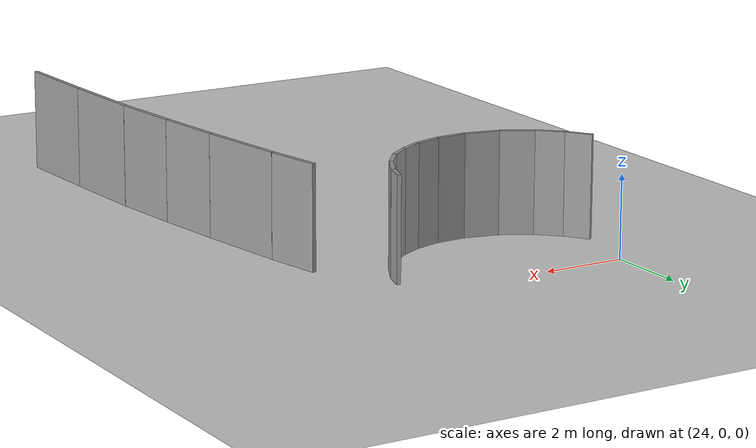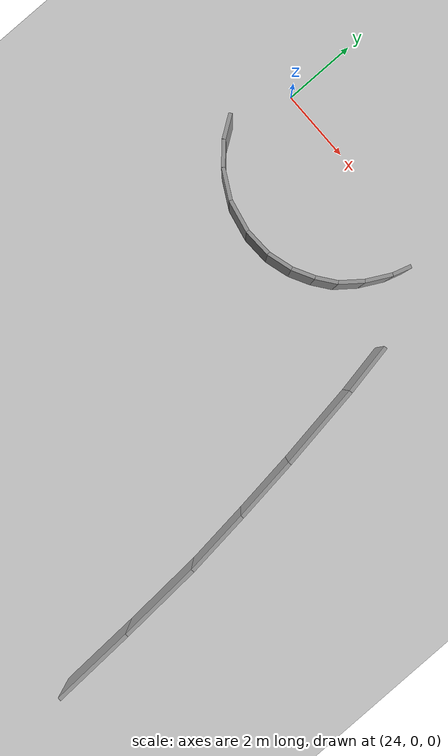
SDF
<sdf version="1.6">
 <world name="default">
  <model name="ground_plane">
   <static>1</static>
   <link name="link">
    <collision name="collision">
     <geometry><plane><normal>0 0 1</normal><size>100 100</size></plane></geometry>
     <surface><friction><ode><mu>100</mu><mu2>50</mu2></ode></friction></surface>
    </collision>
    <visual name="visual">
     <cast_shadows>0</cast_shadows>
     <geometry><plane><normal>0 0 1</normal><size>100 100</size></plane></geometry>
     <material>
      <script><uri>file://media/materials/scripts/gazebo.material</uri><name>Gazebo/Grey</name></script>
     </material>
    </visual>
   </link>
  </model>
  <model name="50041193">
   <static>1</static>
   <link name="Wall_122">
    <collision name="Wall_122_Collision">
     <geometry><box><size>0.6674922732 0.1 2.5</size></box></geometry>
     <pose>0.3337461366 0 1.25 0 0 0</pose>
    </collision>
    <visual name="Wall_122_Visual">
     <pose>0.3337461366 0 1.25 0 0 0</pose>
     <geometry><box><size>0.6674922732 0.1 2.5</size></box></geometry>
     <material>
      <script><uri>file://media/materials/scripts/gazebo.material</uri><name>Gazebo/Grey</name></script>
      <ambient>1 1 1 1</ambient>
     </material>
    </visual>
    <pose>55.2821940092 -54.7592995031 0 0 0 -0.966792976422</pose>
   </link>
   <link name="Wall_123">
    <collision name="Wall_123_Collision">
     <geometry><box><size>0.704048116114 0.1 2.5</size></box></geometry>
     <pose>0.352024058057 0 1.25 0 0 0</pose>
    </collision>
    <visual name="Wall_123_Visual">
     <pose>0.352024058057 0 1.25 0 0 0</pose>
     <geometry><box><size>0.704048116114 0.1 2.5</size></box></geometry>
     <material>
      <script><uri>file://media/materials/scripts/gazebo.material</uri><name>Gazebo/Grey</name></script>
      <ambient>1 1 1 1</ambient>
     </material>
    </visual>
    <pose>55.6612909375 -55.3086913976 0 0 0 -0.73572659466</pose>
   </link>
   <link name="Wall_124">
    <collision name="Wall_124_Collision">
     <geometry><box><size>0.835772640461 0.1 2.5</size></box></geometry>
     <pose>0.417886320231 0 1.25 0 0 0</pose>
    </collision>
    <visual name="Wall_124_Visual">
     <pose>0.417886320231 0 1.25 0 0 0</pose>
     <geometry><box><size>0.835772640461 0.1 2.5</size></box></geometry>
     <material>
      <script><uri>file://media/materials/scripts/gazebo.material</uri><name>Gazebo/Grey</name></script>
      <ambient>1 1 1 1</ambient>
     </material>
    </visual>
    <pose>56.1832323001 -55.7811963857 0 0 0 -0.493096878904</pose>
   </link>
   <link name="Wall_125">
    <collision name="Wall_125_Collision">
     <geometry><box><size>0.870671055662 0.1 2.5</size></box></geometry>
     <pose>0.435335527831 0 1.25 0 0 0</pose>
    </collision>
    <visual name="Wall_125_Visual">
     <pose>0.435335527831 0 1.25 0 0 0</pose>
     <geometry><box><size>0.870671055662 0.1 2.5</size></box></geometry>
     <material>
      <script><uri>file://media/materials/scripts/gazebo.material</uri><name>Gazebo/Grey</name></script>
      <ambient>1 1 1 1</ambient>
     </material>
    </visual>
    <pose>56.9194403142 -56.1768144674 0 0 0 -0.209676297104</pose>
   </link>
   <link name="Wall_126">
    <collision name="Wall_126_Collision">
     <geometry><box><size>0.753229534236 0.1 2.5</size></box></geometry>
     <pose>0.376614767118 0 1.25 0 0 0</pose>
    </collision>
    <visual name="Wall_126_Visual">
     <pose>0.376614767118 0 1.25 0 0 0</pose>
     <geometry><box><size>0.753229534236 0.1 2.5</size></box></geometry>
     <material>
      <script><uri>file://media/materials/scripts/gazebo.material</uri><name>Gazebo/Grey</name></script>
      <ambient>1 1 1 1</ambient>
     </material>
    </visual>
    <pose>57.7710422306 -56.358038812 0 0 0 0.0364518525106</pose>
   </link>
   <link name="Wall_127">
    <collision name="Wall_127_Collision">
     <geometry><box><size>0.692034728299 0.1 2.5</size></box></geometry>
     <pose>0.346017364149 0 1.25 0 0 0</pose>
    </collision>
    <visual name="Wall_127_Visual">
     <pose>0.346017364149 0 1.25 0 0 0</pose>
     <geometry><box><size>0.692034728299 0.1 2.5</size></box></geometry>
     <material>
      <script><uri>file://media/materials/scripts/gazebo.material</uri><name>Gazebo/Grey</name></script>
      <ambient>1 1 1 1</ambient>
     </material>
    </visual>
    <pose>58.5237713981 -56.3305882801 0 0 0 0.281553689848</pose>
   </link>
   <link name="Wall_128">
    <collision name="Wall_128_Collision">
     <geometry><box><size>0.616949915972 0.1 2.5</size></box></geometry>
     <pose>0.308474957986 0 1.25 0 0 0</pose>
    </collision>
    <visual name="Wall_128_Visual">
     <pose>0.308474957986 0 1.25 0 0 0</pose>
     <geometry><box><size>0.616949915972 0.1 2.5</size></box></geometry>
     <material>
      <script><uri>file://media/materials/scripts/gazebo.material</uri><name>Gazebo/Grey</name></script>
      <ambient>1 1 1 1</ambient>
     </material>
    </visual>
    <pose>59.188557195 -56.1383074714 0 0 0 0.491471962552</pose>
   </link>
   <link name="Wall_129">
    <collision name="Wall_129_Collision">
     <geometry><box><size>0.584621098628 0.1 2.5</size></box></geometry>
     <pose>0.292310549314 0 1.25 0 0 0</pose>
    </collision>
    <visual name="Wall_129_Visual">
     <pose>0.292310549314 0 1.25 0 0 0</pose>
     <geometry><box><size>0.584621098628 0.1 2.5</size></box></geometry>
     <material>
      <script><uri>file://media/materials/scripts/gazebo.material</uri><name>Gazebo/Grey</name></script>
      <ambient>1 1 1 1</ambient>
     </material>
    </visual>
    <pose>59.7324844002 -55.8471539136 0 0 0 0.645370590551</pose>
   </link>
   <link name="Wall_130">
    <collision name="Wall_130_Collision">
     <geometry><box><size>0.661591734678 0.1 2.5</size></box></geometry>
     <pose>0.330795867339 0 1.25 0 0 0</pose>
    </collision>
    <visual name="Wall_130_Visual">
     <pose>0.330795867339 0 1.25 0 0 0</pose>
     <geometry><box><size>0.661591734678 0.1 2.5</size></box></geometry>
     <material>
      <script><uri>file://media/materials/scripts/gazebo.material</uri><name>Gazebo/Grey</name></script>
      <ambient>1 1 1 1</ambient>
     </material>
    </visual>
    <pose>60.1995246991 -55.4955075171 0 0 0 0.909045563211</pose>
   </link>
   <link name="Wall_131">
    <collision name="Wall_131_Collision">
     <geometry><box><size>0.707856211065 0.1 2.5</size></box></geometry>
     <pose>0.353928105532 0 1.25 0 0 0</pose>
    </collision>
    <visual name="Wall_131_Visual">
     <pose>0.353928105532 0 1.25 0 0 0</pose>
     <geometry><box><size>0.707856211065 0.1 2.5</size></box></geometry>
     <material>
      <script><uri>file://media/materials/scripts/gazebo.material</uri><name>Gazebo/Grey</name></script>
      <ambient>1 1 1 1</ambient>
     </material>
    </visual>
    <pose>60.6060721593 -54.9735661545 0 0 0 1.08635184509</pose>
   </link>
   <link name="Wall_132">
    <collision name="Wall_132_Collision">
     <geometry><box><size>0.498858241237 0.1 2.5</size></box></geometry>
     <pose>0.249429120619 0 1.25 0 0 0</pose>
    </collision>
    <visual name="Wall_132_Visual">
     <pose>0.249429120619 0 1.25 0 0 0</pose>
     <geometry><box><size>0.498858241237 0.1 2.5</size></box></geometry>
     <material>
      <script><uri>file://media/materials/scripts/gazebo.material</uri><name>Gazebo/Grey</name></script>
      <ambient>1 1 1 1</ambient>
     </material>
    </visual>
    <pose>60.9357327132 -54.3471602679 0 0 0 1.28038877306</pose>
   </link>
   <link name="Wall_136">
    <collision name="Wall_136_Collision">
     <geometry><box><size>1.39882009763 0.1 2.5</size></box></geometry>
     <pose>0.699410048816 0 1.25 0 0 0</pose>
    </collision>
    <visual name="Wall_136_Visual">
     <pose>0.699410048816 0 1.25 0 0 0</pose>
     <geometry><box><size>1.39882009763 0.1 2.5</size></box></geometry>
     <material>
      <script><uri>file://media/materials/scripts/gazebo.material</uri><name>Gazebo/Grey</name></script>
      <ambient>1 1 1 1</ambient>
     </material>
    </visual>
    <pose>62.1829527114 -55.660337794 0 0 0 -1.3804031292</pose>
   </link>
   <link name="Wall_137">
    <collision name="Wall_137_Collision">
     <geometry><box><size>2.32978905466 0.1 2.5</size></box></geometry>
     <pose>1.16489452733 0 1.25 0 0 0</pose>
    </collision>
    <visual name="Wall_137_Visual">
     <pose>1.16489452733 0 1.25 0 0 0</pose>
     <geometry><box><size>2.32978905466 0.1 2.5</size></box></geometry>
     <material>
      <script><uri>file://media/materials/scripts/gazebo.material</uri><name>Gazebo/Grey</name></script>
      <ambient>1 1 1 1</ambient>
     </material>
    </visual>
    <pose>62.4476724237 -57.0338810731 0 0 0 -1.41950314065</pose>
   </link>
   <link name="Wall_138">
    <collision name="Wall_138_Collision">
     <geometry><box><size>1.76329301036 0.1 2.5</size></box></geometry>
     <pose>0.881646505178 0 1.25 0 0 0</pose>
    </collision>
    <visual name="Wall_138_Visual">
     <pose>0.881646505178 0 1.25 0 0 0</pose>
     <geometry><box><size>1.76329301036 0.1 2.5</size></box></geometry>
     <material>
      <script><uri>file://media/materials/scripts/gazebo.material</uri><name>Gazebo/Grey</name></script>
      <ambient>1 1 1 1</ambient>
     </material>
    </visual>
    <pose>62.798810477 -59.3370569471 0 0 0 -1.44375052327</pose>
   </link>
   <link name="Wall_139">
    <collision name="Wall_139_Collision">
     <geometry><box><size>1.81340004737 0.1 2.5</size></box></geometry>
     <pose>0.906700023686 0 1.25 0 0 0</pose>
    </collision>
    <visual name="Wall_139_Visual">
     <pose>0.906700023686 0 1.25 0 0 0</pose>
     <geometry><box><size>1.81340004737 0.1 2.5</size></box></geometry>
     <material>
      <script><uri>file://media/materials/scripts/gazebo.material</uri><name>Gazebo/Grey</name></script>
      <ambient>1 1 1 1</ambient>
     </material>
    </visual>
    <pose>63.0222273057 -61.0861387523 0 0 0 -1.45835908707</pose>
   </link>
   <link name="Wall_140">
    <collision name="Wall_140_Collision">
     <geometry><box><size>2.27390341174 0.1 2.5</size></box></geometry>
     <pose>1.13695170587 0 1.25 0 0 0</pose>
    </collision>
    <visual name="Wall_140_Visual">
     <pose>1.13695170587 0 1.25 0 0 0</pose>
     <geometry><box><size>2.27390341174 0.1 2.5</size></box></geometry>
     <material>
      <script><uri>file://media/materials/scripts/gazebo.material</uri><name>Gazebo/Grey</name></script>
      <ambient>1 1 1 1</ambient>
     </material>
    </visual>
    <pose>63.2256916644 -62.8880882484 0 0 0 -1.51129551158</pose>
   </link>
   <link name="Wall_141">
    <collision name="Wall_141_Collision">
     <geometry><box><size>2.29564706056 0.1 2.5</size></box></geometry>
     <pose>1.14782353028 0 1.25 0 0 0</pose>
    </collision>
    <visual name="Wall_141_Visual">
     <pose>1.14782353028 0 1.25 0 0 0</pose>
     <geometry><box><size>2.29564706056 0.1 2.5</size></box></geometry>
     <material>
      <script><uri>file://media/materials/scripts/gazebo.material</uri><name>Gazebo/Grey</name></script>
      <ambient>1 1 1 1</ambient>
     </material>
    </visual>
    <pose>63.360910951 -65.157967644 0 0 0 -1.525219709</pose>
   </link>
   <pose>-31.7 53.0309199741 0 0 0 0</pose>
  </model>
 </world>
</sdf>
